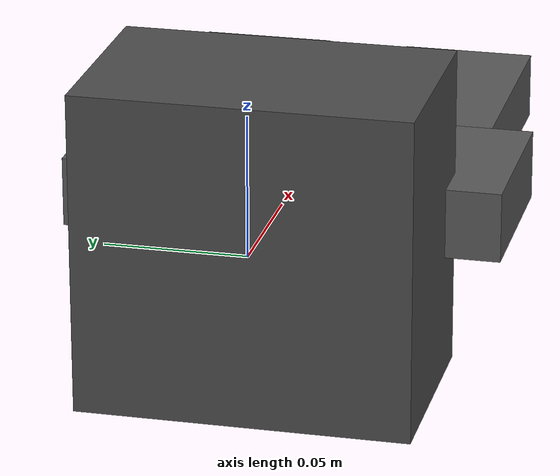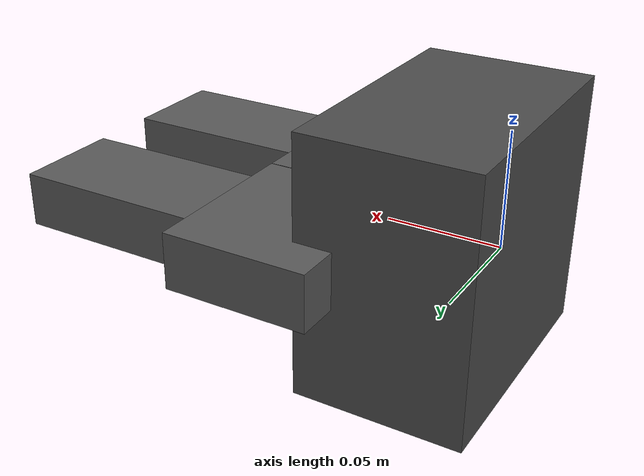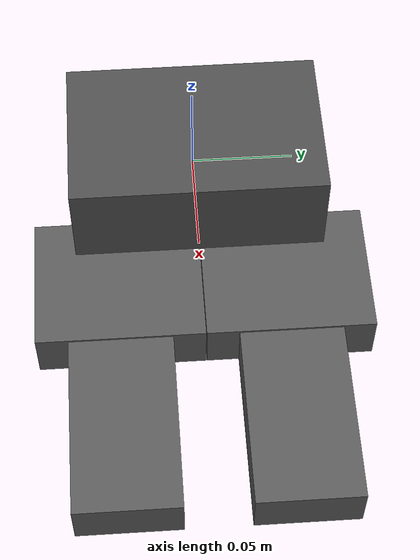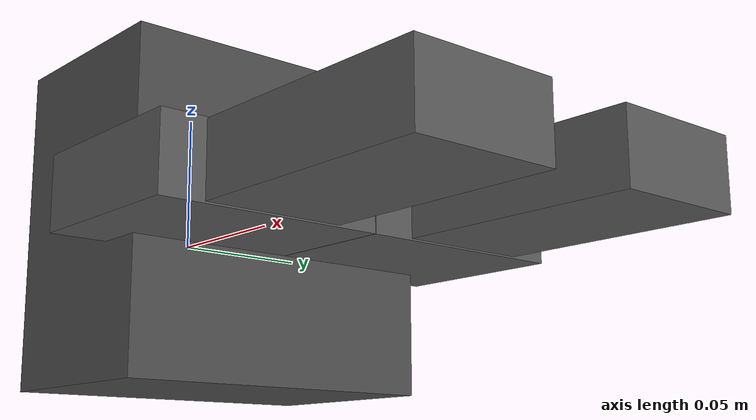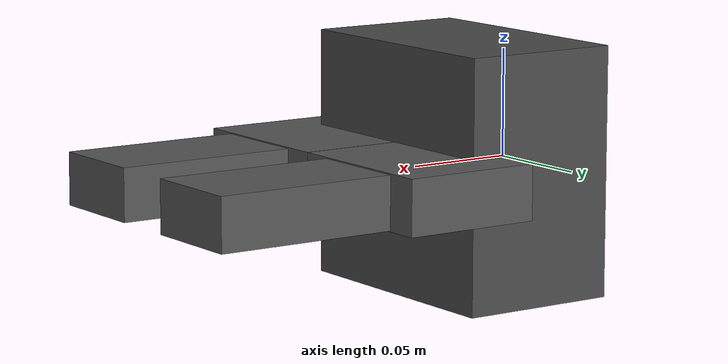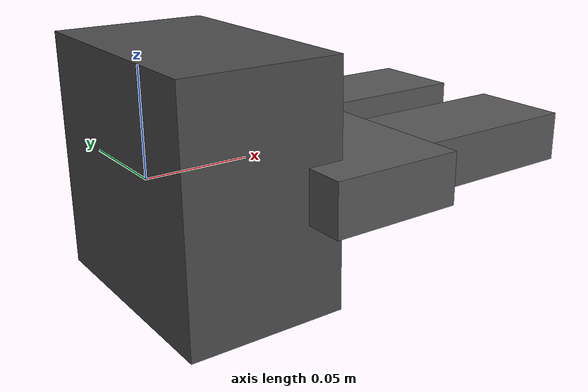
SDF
<?xml version="1.0" ?>
<sdf version='1.9'>
  <model name="oberon7_gripper">
    <link name='end_effector'>
      <inertial>
        <pose>0.024426 0 -1.4e-05 0 0 0</pose>
        <mass>3.4611458108218058</mass>
        <inertia>
          <ixx>0.0077452174065793973</ixx>
          <ixy>0</ixy>
          <ixz>0</ixz>
          <iyy>0.0053614264845439769</iyy>
          <iyz>0</iyz>
          <izz>0.0055705568526005127</izz>
        </inertia>
      </inertial>
      <collision name='end_effector_collision'>
        <pose>0.024426 0 -1.4e-05 0 0 0</pose>
        <geometry>
          <box>
            <size>0.074326 0.117427 0.114298</size>
          </box>
        </geometry>
      </collision>
      <visual name='end_effector_visual'>
        <pose>0 0 0 0 0 0</pose>
        <geometry>
          <mesh>
            <scale>1 1 1</scale>
            <uri>meshes/parallel_gripper/visual/BaseGripper.dae</uri>
          </mesh>
        </geometry>
      </visual>
    </link>
    <joint name='finger_left_joint' type='revolute'>
      <pose relative_to='end_effector'>0.0444267 0.0391376 0 0 0 0</pose>
      <parent>end_effector</parent>
      <child>finger_left</child>
      <axis>
        <xyz>0 0 1</xyz>
        <limit>
          <lower>0</lower>
          <upper>1.047092831441478</upper>
          <effort>30</effort>
          <velocity>0.14999999999999999</velocity>
        </limit>
        <dynamics>
          <damping>5</damping>
          <friction>10</friction>
          <spring_reference>0</spring_reference>
          <spring_stiffness>0</spring_stiffness>
        </dynamics>
      </axis>
    </joint>
    <link name='finger_left'>
      <pose relative_to='finger_left_joint'>0 0 0 0 0 0</pose>
      <inertial>
        <pose>0.025268 -0.001931 -7.9e-05 0 0 0</pose>
        <mass>0.87977051184948352</mass>
        <inertia>
          <ixx>0.00037833060584903811</ixx>
          <ixy>0</ixy>
          <ixz>0</ixz>
          <iyy>0.00088614833021662045</iyy>
          <iyz>0</iyz>
          <izz>0.00091923080428042659</izz>
        </inertia>
      </inertial>
      <collision name='finger_left_collision'>
        <pose>0 0 0 0 0 0</pose>
        <geometry>
          <mesh>
            <scale>1 1 1</scale>
            <uri>meshes/parallel_gripper/visual/Finger.dae</uri>
          </mesh>
        </geometry>
        <surface>
          <contact>
            <ode>
              <kp>1000000</kp>
              <kd>1</kd>
              <min_depth>0.001</min_depth>
            </ode>
          </contact>
          <friction>
            <ode>
              <mu>1</mu>
              <mu2>1</mu2>
            </ode>
          </friction>
        </surface>
        <max_contacts>1</max_contacts>
      </collision>
      <visual name='finger_left_visual'>
        <pose>0 0 0 0 0 0</pose>
        <geometry>
          <mesh>
            <scale>1 1 1</scale>
            <uri>meshes/parallel_gripper/visual/Finger.dae</uri>
          </mesh>
        </geometry>
      </visual>
      <self_collide>false</self_collide>
    </link>
    <joint name='finger_tip_left_joint' type='revolute'>
      <pose relative_to='finger_left'>0.06431000000000001 0 0 3.141592653589793 0 0</pose>
      <parent>finger_left</parent>
      <child>finger_tip_left</child>
      <axis>
        <xyz>0 0 1</xyz>
        <limit>
          <lower>0</lower>
          <upper>0</upper>
          <effort>0</effort>
          <velocity>0</velocity>
        </limit>
        <dynamics>
          <damping>5</damping>
          <friction>10</friction>
          <spring_reference>0</spring_reference>
          <spring_stiffness>0</spring_stiffness>
        </dynamics>
      </axis>
    </joint>
    <link name='finger_tip_left'>
      <pose relative_to='finger_tip_left_joint'>0 0 0 0 0 0</pose>
      <inertial>
        <pose>0.027744 0.017278 0 0 0 0</pose>
        <mass>1.1255052405358521</mass>
        <inertia>
          <ixx>0.00061104700181938674</ixx>
          <ixy>0</ixy>
          <ixz>0</ixz>
          <iyy>0.001349030810390408</iyy>
          <iyz>0</iyz>
          <izz>0.0012155560985734151</izz>
        </inertia>
      </inertial>
      <collision name='finger_tip_left_collision'>
        <pose>0 0 0 0 0 0</pose>
        <geometry>
          <mesh>
            <scale>1 1 1</scale>
            <uri>meshes/parallel_gripper/visual/FingerTip.dae</uri>
          </mesh>
        </geometry>
        <surface>
          <contact>
            <ode>
              <kp>1000000</kp>
              <kd>1</kd>
              <min_depth>0.001</min_depth>
            </ode>
          </contact>
          <friction>
            <ode>
              <mu>1</mu>
              <mu2>1</mu2>
            </ode>
          </friction>
        </surface>
        <max_contacts>3</max_contacts>
      </collision>
      <visual name='finger_tip_left_visual'>
        <pose>0 0 0 0 0 0</pose>
        <geometry>
          <mesh>
            <scale>1 1 1</scale>
            <uri>meshes/parallel_gripper/visual/FingerTip.dae</uri>
          </mesh>
        </geometry>
      </visual>
      <self_collide>true</self_collide>
    </link>
    <joint name='finger_right_joint' type='revolute'>
      <pose relative_to='end_effector'>0.0444267 -0.0391376 0 -1.224646799147353e-16 1.224646799147353e-16 -1.224646799147353e-16</pose>
      <parent>end_effector</parent>
      <child>finger_right</child>
      <axis>
        <xyz>0 0 -1</xyz>
        <limit>
          <lower>0</lower>
          <upper>1.047092831441478</upper>
          <effort>30</effort>
          <velocity>0.14999999999999999</velocity>
        </limit>
        <dynamics>
          <damping>5</damping>
          <friction>10</friction>
          <spring_reference>0</spring_reference>
          <spring_stiffness>0</spring_stiffness>
        </dynamics>
      </axis>
    </joint>
    <link name='finger_right'>
      <pose relative_to='finger_right_joint'>0 0 0 0 0 0</pose>
      <inertial>
        <pose>0.025268 -0.001931 -7.9e-05 0 0 0</pose>
        <mass>0.87977051184948352</mass>
        <inertia>
          <ixx>0.00037833060584903811</ixx>
          <ixy>0</ixy>
          <ixz>0</ixz>
          <iyy>0.00088614833021662045</iyy>
          <iyz>0</iyz>
          <izz>0.00091923080428042659</izz>
        </inertia>
      </inertial>
      <collision name='finger_right_collision'>
        <pose>0 0 0 3.141592653589793 0 0</pose>
        <geometry>
          <mesh>
            <scale>1 1 1</scale>
            <uri>meshes/parallel_gripper/visual/Finger.dae</uri>
          </mesh>
        </geometry>
        <surface>
          <contact>
            <ode>
              <kp>1000000</kp>
              <kd>1</kd>
              <min_depth>0.001</min_depth>
            </ode>
          </contact>
          <friction>
            <ode>
              <mu>1</mu>
              <mu2>1</mu2>
            </ode>
          </friction>
        </surface>
        <max_contacts>1</max_contacts>
      </collision>
      <visual name='finger_right_visual'>
        <pose>0 0 0 3.141592653589793 0 0</pose>
        <geometry>
          <mesh>
            <scale>1 1 1</scale>
            <uri>meshes/parallel_gripper/visual/Finger.dae</uri>
          </mesh>
        </geometry>
      </visual>
      <self_collide>false</self_collide>
    </link>
    <joint name='finger_tip_right_joint' type='revolute'>
      <pose relative_to='finger_right'>0.06431000000000001 0 0 0 0 0</pose>
      <parent>finger_right</parent>
      <child>finger_tip_right</child>
      <axis>
        <xyz>0 0 1</xyz>
        <limit>
          <lower>0</lower>
          <upper>0</upper>
          <effort>0</effort>
          <velocity>0</velocity>
        </limit>
        <dynamics>
          <damping>5</damping>
          <friction>10</friction>
          <spring_reference>0</spring_reference>
          <spring_stiffness>0</spring_stiffness>
        </dynamics>
      </axis>
    </joint>
    <link name='finger_tip_right'>
      <pose relative_to='finger_tip_right_joint'>0 0 0 0 0 0</pose>
      <inertial>
        <pose>0.027744 0.017278 0 0 0 0</pose>
        <mass>1.1255052405358521</mass>
        <inertia>
          <ixx>0.00061104700181938674</ixx>
          <ixy>0</ixy>
          <ixz>0</ixz>
          <iyy>0.001349030810390408</iyy>
          <iyz>0</iyz>
          <izz>0.0012155560985734151</izz>
        </inertia>
      </inertial>
      <collision name='finger_tip_right_collision'>
        <pose>0 0 0 0 0 0</pose>
        <geometry>
          <mesh>
            <scale>1 1 1</scale>
            <uri>meshes/parallel_gripper/visual/FingerTip.dae</uri>
          </mesh>
        </geometry>
        <surface>
          <contact>
            <ode>
              <kp>1000000</kp>
              <kd>1</kd>
              <min_depth>0.001</min_depth>
            </ode>
          </contact>
          <friction>
            <ode>
              <mu>1</mu>
              <mu2>1</mu2>
            </ode>
          </friction>
        </surface>
        <max_contacts>3</max_contacts>
      </collision>
      <visual name='finger_tip_right_visual'>
        <pose>0 0 0 0 0 0</pose>
        <geometry>
          <mesh>
            <scale>1 1 1</scale>
            <uri>meshes/parallel_gripper/visual/FingerTip.dae</uri>
          </mesh>
        </geometry>
      </visual>
      <self_collide>true</self_collide>
    </link>

    <!-- Controller -->
    <plugin
      filename="ignition-gazebo-joint-position-controller-system"
      name="ignition::gazebo::systems::JointPositionController">
      <joint_name>finger_left_joint</joint_name>
      <topic>/oberon7_gripper/finger_left</topic>
      <use_velocity_commands>true</use_velocity_commands>
    </plugin>

    <plugin
      filename="ignition-gazebo-joint-position-controller-system"
      name="ignition::gazebo::systems::JointPositionController">
      <joint_name>finger_right_joint</joint_name>
      <topic>/oberon7_gripper/finger_right</topic>
      <use_velocity_commands>true</use_velocity_commands>
    </plugin>

    <!-- Joint state publisher -->
    <plugin filename="libignition-gazebo-joint-state-publisher-system.so" name="ignition::gazebo::systems::JointStatePublisher">
        <joint_name>finger_left_joint</joint_name>
        <joint_name>finger_right_joint</joint_name>
    </plugin>

    <frame name="mount_point"/>

  </model>
</sdf>
